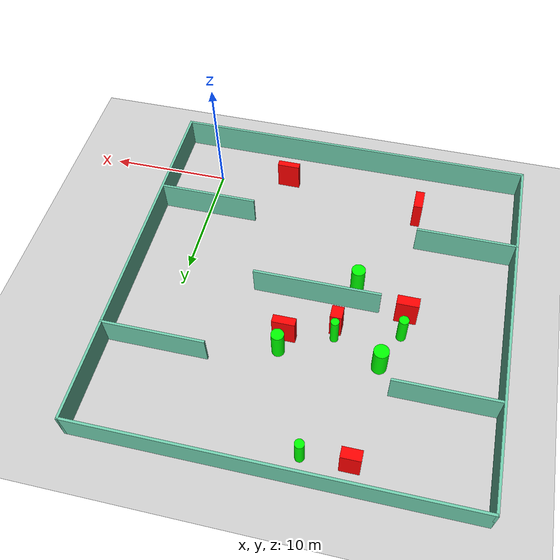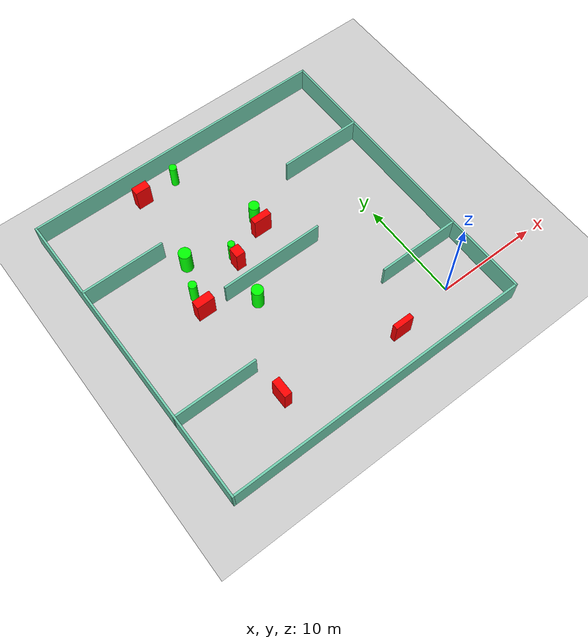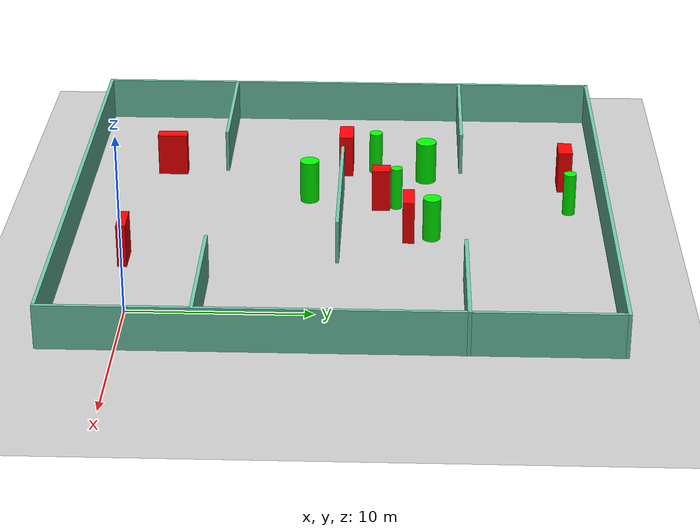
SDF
<sdf version="1.7">
 <world name="default">
  <light name="sun" type="directional">
   <pose>0 0 10 0 -0 0</pose>
   <diffuse>0.8 0.8 0.8 1</diffuse>
   <specular>0.2 0.2 0.2 1</specular>
   <attenuation>
    <range>1000</range>
    <constant>0.9</constant>
    <linear>0.01</linear>
    <quadratic>0.001</quadratic>
   </attenuation>
   <direction>-0.5 0.1 -0.9</direction>
   <spot><inner_angle>0</inner_angle><outer_angle>0</outer_angle><falloff>0</falloff></spot>
  </light>
  <model name="ground_plane">
   <static>1</static>
   <link name="link">
    <collision name="collision">
     <geometry><plane><normal>0 0 1</normal><size>100 100</size></plane></geometry>
     <surface>
      <contact><collide_bitmask>65535</collide_bitmask></contact>
      <friction><ode><mu>100</mu><mu2>50</mu2></ode></friction>
     </surface>
    </collision>
    <visual name="visual">
     <cast_shadows>0</cast_shadows>
     <geometry><plane><normal>0 0 1</normal><size>100 100</size></plane></geometry>
     <material>
      <script><uri>file://media/materials/scripts/gazebo.material</uri><name>Gazebo/Grey</name></script>
     </material>
    </visual>
   </link>
  </model>
  <gravity>0 0 -9.8</gravity>
  <magnetic_field>6e-06 2.3e-05 -4.2e-05</magnetic_field>
  <atmosphere type="adiabatic"/>
  <physics type="ode">
   <max_step_size>0.001</max_step_size>
   <real_time_factor>1</real_time_factor>
   <real_time_update_rate>1000</real_time_update_rate>
  </physics>
  <scene><ambient>0.4 0.4 0.4 1</ambient><background>0.7 0.7 0.7 1</background><shadows>1</shadows></scene>
  <spherical_coordinates>
   <surface_model>EARTH_WGS84</surface_model>
   <latitude_deg>0</latitude_deg>
   <longitude_deg>0</longitude_deg>
   <elevation>0</elevation>
   <heading_deg>0</heading_deg>
  </spherical_coordinates>
  <model name="my_base_walls">
   <link name="Wall_10">
    <collision name="Wall_10_Collision">
     <geometry><box><size>8.2 0.2 2.5</size></box></geometry>
     <pose>0 0 1.25 0 -0 0</pose>
    </collision>
    <visual name="Wall_10_Visual">
     <pose>0 0 1.25 0 -0 0</pose>
     <geometry><box><size>8.2 0.2 2.5</size></box></geometry>
     <material>
      <script><uri>file://media/materials/scripts/gazebo.material</uri><name>Gazebo/Grey</name></script>
      <ambient>0.435294 0.796078 0.67451 1</ambient>
     </material>
     <meta><layer>0</layer></meta>
    </visual>
    <pose>-11 -7 0 0 -0 0</pose>
   </link>
   <link name="Wall_12">
    <collision name="Wall_12_Collision">
     <geometry><box><size>8.2 0.2 2.5</size></box></geometry>
     <pose>0 0 1.25 0 -0 0</pose>
    </collision>
    <visual name="Wall_12_Visual">
     <pose>0 0 1.25 0 -0 0</pose>
     <geometry><box><size>8.2 0.2 2.5</size></box></geometry>
     <material>
      <script><uri>file://media/materials/scripts/gazebo.material</uri><name>Gazebo/Grey</name></script>
      <ambient>0.435294 0.796078 0.67451 1</ambient>
     </material>
     <meta><layer>0</layer></meta>
    </visual>
    <pose>-11 7 0 0 -0 0</pose>
   </link>
   <link name="Wall_14">
    <collision name="Wall_14_Collision">
     <geometry><box><size>8.2 0.2 2.5</size></box></geometry>
     <pose>0 0 1.25 0 -0 0</pose>
    </collision>
    <visual name="Wall_14_Visual">
     <pose>0 0 1.25 0 -0 0</pose>
     <geometry><box><size>8.2 0.2 2.5</size></box></geometry>
     <material>
      <script><uri>file://media/materials/scripts/gazebo.material</uri><name>Gazebo/Grey</name></script>
      <ambient>0.435294 0.796078 0.67451 1</ambient>
     </material>
     <meta><layer>0</layer></meta>
    </visual>
    <pose>11 7 0 0 -0 3.14159</pose>
   </link>
   <link name="Wall_16">
    <collision name="Wall_16_Collision">
     <geometry><box><size>10.2 0.2 2.5</size></box></geometry>
     <pose>0 0 1.25 0 -0 0</pose>
    </collision>
    <visual name="Wall_16_Visual">
     <pose>0 0 1.25 0 -0 0</pose>
     <geometry><box><size>10.2 0.2 2.5</size></box></geometry>
     <material>
      <script><uri>file://media/materials/scripts/gazebo.material</uri><name>Gazebo/Grey</name></script>
      <ambient>0.435294 0.796078 0.67451 1</ambient>
     </material>
     <meta><layer>0</layer></meta>
    </visual>
    <pose>0 0 0 0 -0 3.14159</pose>
   </link>
   <link name="Wall_2">
    <collision name="Wall_2_Collision">
     <geometry><box><size>30.2 0.2 2.5</size></box></geometry>
     <pose>0 0 1.25 0 -0 0</pose>
    </collision>
    <visual name="Wall_2_Visual">
     <pose>0 0 1.25 0 -0 0</pose>
     <geometry><box><size>30.2 0.2 2.5</size></box></geometry>
     <material>
      <script><uri>file://media/materials/scripts/gazebo.material</uri><name>Gazebo/Grey</name></script>
      <ambient>0.435294 0.796078 0.67451 1</ambient>
     </material>
     <meta><layer>0</layer></meta>
    </visual>
    <pose>0 -15 0 0 -0 3.14159</pose>
   </link>
   <link name="Wall_3">
    <collision name="Wall_3_Collision">
     <geometry><box><size>30.2 0.2 2.5</size></box></geometry>
     <pose>0 0 1.25 0 -0 0</pose>
    </collision>
    <visual name="Wall_3_Visual">
     <pose>0 0 1.25 0 -0 0</pose>
     <geometry><box><size>30.2 0.2 2.5</size></box></geometry>
     <material>
      <script><uri>file://media/materials/scripts/gazebo.material</uri><name>Gazebo/Grey</name></script>
      <ambient>0.435294 0.796078 0.67451 1</ambient>
     </material>
     <meta><layer>0</layer></meta>
    </visual>
    <pose>-15 0 0 0 -0 1.5708</pose>
   </link>
   <link name="Wall_4">
    <collision name="Wall_4_Collision">
     <geometry><box><size>30.2 0.2 2.5</size></box></geometry>
     <pose>0 0 1.25 0 -0 0</pose>
    </collision>
    <visual name="Wall_4_Visual">
     <pose>0 0 1.25 0 -0 0</pose>
     <geometry><box><size>30.2 0.2 2.5</size></box></geometry>
     <material>
      <script><uri>file://media/materials/scripts/gazebo.material</uri><name>Gazebo/Grey</name></script>
      <ambient>0.435294 0.796078 0.67451 1</ambient>
     </material>
     <meta><layer>0</layer></meta>
    </visual>
    <pose>0 15 0 0 -0 0</pose>
   </link>
   <link name="Wall_6">
    <collision name="Wall_6_Collision">
     <geometry><box><size>30.2 0.2 2.5</size></box></geometry>
     <pose>0 0 1.25 0 -0 0</pose>
    </collision>
    <visual name="Wall_6_Visual">
     <pose>0 0 1.25 0 -0 0</pose>
     <geometry><box><size>30.2 0.2 2.5</size></box></geometry>
     <material>
      <script><uri>file://media/materials/scripts/gazebo.material</uri><name>Gazebo/Grey</name></script>
      <ambient>0.435294 0.796078 0.67451 1</ambient>
     </material>
     <meta><layer>0</layer></meta>
    </visual>
    <pose>15 0 0 0 -0 1.5708</pose>
   </link>
   <link name="Wall_8">
    <collision name="Wall_8_Collision">
     <geometry><box><size>8.2 0.2 2.5</size></box></geometry>
     <pose>0 0 1.25 0 -0 0</pose>
    </collision>
    <visual name="Wall_8_Visual">
     <pose>0 0 1.25 0 -0 0</pose>
     <geometry><box><size>8.2 0.2 2.5</size></box></geometry>
     <material>
      <script><uri>file://media/materials/scripts/gazebo.material</uri><name>Gazebo/Grey</name></script>
      <ambient>0.435294 0.796078 0.67451 1</ambient>
     </material>
     <meta><layer>0</layer></meta>
    </visual>
    <pose>11 -7 0 0 -0 3.14159</pose>
   </link>
   <static>1</static>
   <pose>-11 11 0 0 -0 0</pose>
  </model>
  <model name="cylinder1">
   <static>1</static>
   <link name="link">
    <inertial>
     <mass>1</mass>
     <inertia><ixx>0.5</ixx><ixy>0</ixy><ixz>0</ixz><iyy>0.5</iyy><iyz>0</iyz><izz>1</izz></inertia>
    </inertial>
    <collision name="collision">
     <geometry><cylinder><radius>0.5046099066763655</radius><length>2.5</length></cylinder></geometry>
    </collision>
    <visual name="visual">
     <geometry><cylinder><radius>0.5046099066763655</radius><length>2.5</length></cylinder></geometry>
     <material>
      <ambient>0 1 0 1</ambient>
      <diffuse>0 1 0 1</diffuse>
      <specular>0.1 0.1 0.1 1</specular>
      <emissive>0 0 0 0</emissive>
     </material>
    </visual>
   </link>
   <pose>-9.158452523423872 16.20715649757856 1.25 0 0 0</pose>
  </model>
  <model name="cylinder2">
   <static>1</static>
   <link name="link">
    <inertial>
     <mass>1</mass>
     <inertia><ixx>0.5</ixx><ixy>0</ixy><ixz>0</ixz><iyy>0.5</iyy><iyz>0</iyz><izz>1</izz></inertia>
    </inertial>
    <collision name="collision">
     <geometry><cylinder><radius>0.38582911307477563</radius><length>2.5</length></cylinder></geometry>
    </collision>
    <visual name="visual">
     <geometry><cylinder><radius>0.38582911307477563</radius><length>2.5</length></cylinder></geometry>
     <material>
      <ambient>0 1 0 1</ambient>
      <diffuse>0 1 0 1</diffuse>
      <specular>0.1 0.1 0.1 1</specular>
      <emissive>0 0 0 0</emissive>
     </material>
    </visual>
   </link>
   <pose>-18.135172451508904 12.921053862223099 1.25 0 0 0</pose>
  </model>
  <model name="cylinder3">
   <static>1</static>
   <link name="link">
    <inertial>
     <mass>1</mass>
     <inertia><ixx>0.5</ixx><ixy>0</ixy><ixz>0</ixz><iyy>0.5</iyy><iyz>0</iyz><izz>1</izz></inertia>
    </inertial>
    <collision name="collision">
     <geometry><cylinder><radius>0.3290215518995528</radius><length>2.5</length></cylinder></geometry>
    </collision>
    <visual name="visual">
     <geometry><cylinder><radius>0.3290215518995528</radius><length>2.5</length></cylinder></geometry>
     <material>
      <ambient>0 1 0 1</ambient>
      <diffuse>0 1 0 1</diffuse>
      <specular>0.1 0.1 0.1 1</specular>
      <emissive>0 0 0 0</emissive>
     </material>
    </visual>
   </link>
   <pose>-13.11155965029372 14.198509008309347 1.25 0 0 0</pose>
  </model>
  <model name="cylinder4">
   <static>1</static>
   <link name="link">
    <inertial>
     <mass>1</mass>
     <inertia><ixx>0.5</ixx><ixy>0</ixy><ixz>0</ixz><iyy>0.5</iyy><iyz>0</iyz><izz>1</izz></inertia>
    </inertial>
    <collision name="collision">
     <geometry><cylinder><radius>0.55070871201512</radius><length>2.5</length></cylinder></geometry>
    </collision>
    <visual name="visual">
     <geometry><cylinder><radius>0.55070871201512</radius><length>2.5</length></cylinder></geometry>
     <material>
      <ambient>0 1 0 1</ambient>
      <diffuse>0 1 0 1</diffuse>
      <specular>0.1 0.1 0.1 1</specular>
      <emissive>0 0 0 0</emissive>
     </material>
    </visual>
   </link>
   <pose>-13.982501057560338 9.12772605168026 1.25 0 0 0</pose>
  </model>
  <model name="cylinder5">
   <static>1</static>
   <link name="link">
    <inertial>
     <mass>1</mass>
     <inertia><ixx>0.5</ixx><ixy>0</ixy><ixz>0</ixz><iyy>0.5</iyy><iyz>0</iyz><izz>1</izz></inertia>
    </inertial>
    <collision name="collision">
     <geometry><cylinder><radius>0.5938350195951785</radius><length>2.5</length></cylinder></geometry>
    </collision>
    <visual name="visual">
     <geometry><cylinder><radius>0.5938350195951785</radius><length>2.5</length></cylinder></geometry>
     <material>
      <ambient>0 1 0 1</ambient>
      <diffuse>0 1 0 1</diffuse>
      <specular>0.1 0.1 0.1 1</specular>
      <emissive>0 0 0 0</emissive>
     </material>
    </visual>
   </link>
   <pose>-16.904430036616265 15.917980090680206 1.25 0 0 0</pose>
  </model>
  <model name="cylinder6">
   <static>1</static>
   <link name="link">
    <inertial>
     <mass>1</mass>
     <inertia><ixx>0.5</ixx><ixy>0</ixy><ixz>0</ixz><iyy>0.5</iyy><iyz>0</iyz><izz>1</izz></inertia>
    </inertial>
    <collision name="collision">
     <geometry><cylinder><radius>0.3626588661427484</radius><length>2.5</length></cylinder></geometry>
    </collision>
    <visual name="visual">
     <geometry><cylinder><radius>0.3626588661427484</radius><length>2.5</length></cylinder></geometry>
     <material>
      <ambient>0 1 0 1</ambient>
      <diffuse>0 1 0 1</diffuse>
      <specular>0.1 0.1 0.1 1</specular>
      <emissive>0 0 0 0</emissive>
     </material>
    </visual>
   </link>
   <pose>-12.658028583581363 24.13752119458631 1.25 0 0 0</pose>
  </model>
  <model name="box1">
   <static>1</static>
   <link name="link">
    <inertial>
     <mass>1</mass>
     <inertia><ixx>0.083</ixx><ixy>0</ixy><ixz>0</ixz><iyy>0.083</iyy><iyz>0</iyz><izz>0.083</izz></inertia>
    </inertial>
    <collision name="collision">
     <geometry><box><size>0.7415434486847191 1.7270638439721038 2.5</size></box></geometry>
    </collision>
    <visual name="visual">
     <geometry><box><size>0.7415434486847191 1.7270638439721038 2.5</size></box></geometry>
     <material>
      <ambient>1 0 0 1</ambient>
      <diffuse>1 0 0 1</diffuse>
      <specular>0.1 0.1 0.1 1</specular>
      <emissive>0 0 0 0</emissive>
     </material>
    </visual>
    <sensor name="my_contact" type="contact">
     <contact><collision>box_collision</collision><topic>__default_topic__</topic></contact>
    </sensor>
   </link>
   <pose>-17.658703393054413 0.7684613717139555 1.25 0 0 0</pose>
  </model>
  <model name="box2">
   <static>1</static>
   <link name="link">
    <inertial>
     <mass>1</mass>
     <inertia><ixx>0.083</ixx><ixy>0</ixy><ixz>0</ixz><iyy>0.083</iyy><iyz>0</iyz><izz>0.083</izz></inertia>
    </inertial>
    <collision name="collision">
     <geometry><box><size>1.503217970241592 0.8212515761136863 2.5</size></box></geometry>
    </collision>
    <visual name="visual">
     <geometry><box><size>1.503217970241592 0.8212515761136863 2.5</size></box></geometry>
     <material>
      <ambient>1 0 0 1</ambient>
      <diffuse>1 0 0 1</diffuse>
      <specular>0.1 0.1 0.1 1</specular>
      <emissive>0 0 0 0</emissive>
     </material>
    </visual>
    <sensor name="my_contact" type="contact">
     <contact><collision>box_collision</collision><topic>__default_topic__</topic></contact>
    </sensor>
   </link>
   <pose>-16.217908244336815 24.06320067304331 1.25 0 0 0</pose>
  </model>
  <model name="box3">
   <static>1</static>
   <link name="link">
    <inertial>
     <mass>1</mass>
     <inertia><ixx>0.083</ixx><ixy>0</ixy><ixz>0</ixz><iyy>0.083</iyy><iyz>0</iyz><izz>0.083</izz></inertia>
    </inertial>
    <collision name="collision">
     <geometry><box><size>0.9286500125915668 1.0535306636619919 2.5</size></box></geometry>
    </collision>
    <visual name="visual">
     <geometry><box><size>0.9286500125915668 1.0535306636619919 2.5</size></box></geometry>
     <material>
      <ambient>1 0 0 1</ambient>
      <diffuse>1 0 0 1</diffuse>
      <specular>0.1 0.1 0.1 1</specular>
      <emissive>0 0 0 0</emissive>
     </material>
    </visual>
    <sensor name="my_contact" type="contact">
     <contact><collision>box_collision</collision><topic>__default_topic__</topic></contact>
    </sensor>
   </link>
   <pose>-13.091120831583185 13.311151354882146 1.25 0 0 0</pose>
  </model>
  <model name="box4">
   <static>1</static>
   <link name="link">
    <inertial>
     <mass>1</mass>
     <inertia><ixx>0.083</ixx><ixy>0</ixy><ixz>0</ixz><iyy>0.083</iyy><iyz>0</iyz><izz>0.083</izz></inertia>
    </inertial>
    <collision name="collision">
     <geometry><box><size>1.7578841599940254 0.8285935115995239 2.5</size></box></geometry>
    </collision>
    <visual name="visual">
     <geometry><box><size>1.7578841599940254 0.8285935115995239 2.5</size></box></geometry>
     <material>
      <ambient>1 0 0 1</ambient>
      <diffuse>1 0 0 1</diffuse>
      <specular>0.1 0.1 0.1 1</specular>
      <emissive>0 0 0 0</emissive>
     </material>
    </visual>
    <sensor name="my_contact" type="contact">
     <contact><collision>box_collision</collision><topic>__default_topic__</topic></contact>
    </sensor>
   </link>
   <pose>-18.21344532966194 11.153710272581318 1.25 0 0 0</pose>
  </model>
  <model name="box5">
   <static>1</static>
   <link name="link">
    <inertial>
     <mass>1</mass>
     <inertia><ixx>0.083</ixx><ixy>0</ixy><ixz>0</ixz><iyy>0.083</iyy><iyz>0</iyz><izz>0.083</izz></inertia>
    </inertial>
    <collision name="collision">
     <geometry><box><size>1.8074582089514184 0.6596459778493029 2.5</size></box></geometry>
    </collision>
    <visual name="visual">
     <geometry><box><size>1.8074582089514184 0.6596459778493029 2.5</size></box></geometry>
     <material>
      <ambient>1 0 0 1</ambient>
      <diffuse>1 0 0 1</diffuse>
      <specular>0.1 0.1 0.1 1</specular>
      <emissive>0 0 0 0</emissive>
     </material>
    </visual>
    <sensor name="my_contact" type="contact">
     <contact><collision>box_collision</collision><topic>__default_topic__</topic></contact>
    </sensor>
   </link>
   <pose>-9.340527122554807 14.904478201541522 1.25 0 0 0</pose>
  </model>
  <model name="box6">
   <static>1</static>
   <link name="link">
    <inertial>
     <mass>1</mass>
     <inertia><ixx>0.083</ixx><ixy>0</ixy><ixz>0</ixz><iyy>0.083</iyy><iyz>0</iyz><izz>0.083</izz></inertia>
    </inertial>
    <collision name="collision">
     <geometry><box><size>1.8635824027392132 0.5227030067962719 2.5</size></box></geometry>
    </collision>
    <visual name="visual">
     <geometry><box><size>1.8635824027392132 0.5227030067962719 2.5</size></box></geometry>
     <material>
      <ambient>1 0 0 1</ambient>
      <diffuse>1 0 0 1</diffuse>
      <specular>0.1 0.1 0.1 1</specular>
      <emissive>0 0 0 0</emissive>
     </material>
    </visual>
    <sensor name="my_contact" type="contact">
     <contact><collision>box_collision</collision><topic>__default_topic__</topic></contact>
    </sensor>
   </link>
   <pose>-5.994947673865656 -0.7625165867321289 1.25 0 0 0</pose>
  </model>
 </world>
</sdf>
